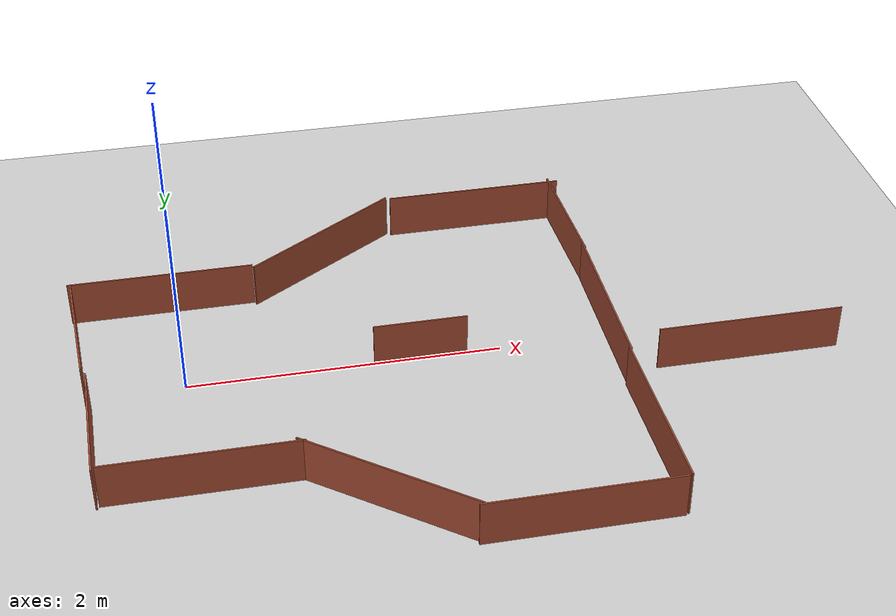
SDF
<sdf version="1.7">
 <world name="default">
  <light name="sun" type="directional">
   <pose>0 0 10 0 -0 0</pose>
   <diffuse>0.8 0.8 0.8 1</diffuse>
   <specular>0.2 0.2 0.2 1</specular>
   <attenuation>
    <range>1000</range>
    <constant>0.9</constant>
    <linear>0.01</linear>
    <quadratic>0.001</quadratic>
   </attenuation>
   <direction>-0.5 0.1 -0.9</direction>
   <spot><inner_angle>0</inner_angle><outer_angle>0</outer_angle><falloff>0</falloff></spot>
  </light>
  <model name="ground_plane">
   <static>1</static>
   <link name="link">
    <collision name="collision">
     <geometry><plane><normal>0 0 1</normal><size>100 100</size></plane></geometry>
     <surface>
      <contact><collide_bitmask>65535</collide_bitmask></contact>
      <friction><ode><mu>100</mu><mu2>50</mu2></ode></friction>
     </surface>
    </collision>
    <visual name="visual">
     <cast_shadows>0</cast_shadows>
     <geometry><plane><normal>0 0 1</normal><size>100 100</size></plane></geometry>
     <material>
      <script><uri>file://media/materials/scripts/gazebo.material</uri><name>Gazebo/Grey</name></script>
     </material>
    </visual>
   </link>
  </model>
  <gravity>0 0 -9.8</gravity>
  <magnetic_field>6e-06 2.3e-05 -4.2e-05</magnetic_field>
  <atmosphere type="adiabatic"/>
  <physics type="ode">
   <max_step_size>0.001</max_step_size>
   <real_time_factor>1</real_time_factor>
   <real_time_update_rate>1000</real_time_update_rate>
  </physics>
  <scene><ambient>0.4 0.4 0.4 1</ambient><background>0.7 0.7 0.7 1</background><shadows>1</shadows></scene>
  <spherical_coordinates>
   <surface_model>EARTH_WGS84</surface_model>
   <latitude_deg>0</latitude_deg>
   <longitude_deg>0</longitude_deg>
   <elevation>0</elevation>
   <heading_deg>0</heading_deg>
  </spherical_coordinates>
  <model name="Pared120">
   <pose>0.058178 -0.506446 0 0 -0 0</pose>
   <link name="Wall_0">
    <collision name="Wall_0_Collision">
     <geometry><box><size>1.2 0.01 0.3</size></box></geometry>
     <pose>0 0 0.15 0 -0 0</pose>
    </collision>
    <visual name="Wall_0_Visual">
     <pose>0 0 0.15 0 -0 0</pose>
     <geometry><box><size>1.2 0.01 0.3</size></box></geometry>
     <material>
      <script><uri>file://media/materials/scripts/gazebo.material</uri><name>Gazebo/Bricks</name></script>
      <ambient>1 1 1 1</ambient>
     </material>
     <meta><layer>0</layer></meta>
    </visual>
    <pose>-0.0225 -0.4975 0 0 -0 0</pose>
   </link>
   <static>1</static>
  </model>
  <model name="Pared120_0">
   <pose>-0.061213 1.32119 0 0 -0 0</pose>
   <link name="Wall_0">
    <collision name="Wall_0_Collision">
     <geometry><box><size>1.2 0.01 0.3</size></box></geometry>
     <pose>0 0 0.15 0 -0 0</pose>
    </collision>
    <visual name="Wall_0_Visual">
     <pose>0 0 0.15 0 -0 0</pose>
     <geometry><box><size>1.2 0.01 0.3</size></box></geometry>
     <material>
      <script><uri>file://media/materials/scripts/gazebo.material</uri><name>Gazebo/Bricks</name></script>
      <ambient>1 1 1 1</ambient>
     </material>
     <meta><layer>0</layer></meta>
    </visual>
    <pose>-0.0225 -0.4975 0 0 -0 0</pose>
   </link>
   <static>1</static>
  </model>
  <model name="Pared90">
   <pose>-0.084849 -0.746159 0 0 0 -1.55986</pose>
   <link name="Wall_0">
    <collision name="Wall_0_Collision">
     <geometry><box><size>0.9 0.01 0.3</size></box></geometry>
     <pose>0 0 0.15 0 -0 0</pose>
    </collision>
    <visual name="Wall_0_Visual">
     <pose>0 0 0.15 0 -0 0</pose>
     <geometry><box><size>0.9 0.01 0.3</size></box></geometry>
     <material>
      <script><uri>file://media/materials/scripts/gazebo.material</uri><name>Gazebo/Bricks</name></script>
      <ambient>1 1 1 1</ambient>
     </material>
     <meta><layer>0</layer></meta>
    </visual>
    <pose>-0.1725 -0.4975 0 0 -0 0</pose>
   </link>
   <static>1</static>
  </model>
  <model name="Pared90_0">
   <pose>-0.133161 0.217663 0 0 0 -1.51879</pose>
   <link name="Wall_0">
    <collision name="Wall_0_Collision">
     <geometry><box><size>0.9 0.01 0.3</size></box></geometry>
     <pose>0 0 0.15 0 -0 0</pose>
    </collision>
    <visual name="Wall_0_Visual">
     <pose>0 0 0.15 0 -0 0</pose>
     <geometry><box><size>0.9 0.01 0.3</size></box></geometry>
     <material>
      <script><uri>file://media/materials/scripts/gazebo.material</uri><name>Gazebo/Bricks</name></script>
      <ambient>1 1 1 1</ambient>
     </material>
     <meta><layer>0</layer></meta>
    </visual>
    <pose>-0.1725 -0.4975 0 0 -0 0</pose>
   </link>
   <static>1</static>
  </model>
  <model name="Pared60">
   <pose>1.80586 0.483224 0 0 -0 0</pose>
   <link name="Wall_0">
    <collision name="Wall_0_Collision">
     <geometry><box><size>0.6 0.01 0.3</size></box></geometry>
     <pose>0 0 0.15 0 -0 0</pose>
    </collision>
    <visual name="Wall_0_Visual">
     <pose>0 0 0.15 0 -0 0</pose>
     <geometry><box><size>0.6 0.01 0.3</size></box></geometry>
     <material>
      <script><uri>file://media/materials/scripts/gazebo.material</uri><name>Gazebo/Bricks</name></script>
      <ambient>1 1 1 1</ambient>
     </material>
     <meta><layer>0</layer></meta>
    </visual>
    <pose>-0.3225 -0.4975 0 0 -0 0</pose>
   </link>
   <static>1</static>
  </model>
  <model name="Pared120_1">
   <pose>0.724012 -1.72341 0 0 -0 2.47021</pose>
   <link name="Wall_0">
    <collision name="Wall_0_Collision">
     <geometry><box><size>1.2 0.01 0.3</size></box></geometry>
     <pose>0 0 0.15 0 -0 0</pose>
    </collision>
    <visual name="Wall_0_Visual">
     <pose>0 0 0.15 0 -0 0</pose>
     <geometry><box><size>1.2 0.01 0.3</size></box></geometry>
     <material>
      <script><uri>file://media/materials/scripts/gazebo.material</uri><name>Gazebo/Bricks</name></script>
      <ambient>1 1 1 1</ambient>
     </material>
     <meta><layer>0</layer></meta>
    </visual>
    <pose>-0.0225 -0.4975 0 0 -0 0</pose>
   </link>
   <static>1</static>
  </model>
  <model name="Pared120_2">
   <pose>0.757219 1.55755 0 0 -0 0.596218</pose>
   <link name="Wall_0">
    <collision name="Wall_0_Collision">
     <geometry><box><size>1.2 0.01 0.3</size></box></geometry>
     <pose>0 0 0.15 0 -0 0</pose>
    </collision>
    <visual name="Wall_0_Visual">
     <pose>0 0 0.15 0 -0 0</pose>
     <geometry><box><size>1.2 0.01 0.3</size></box></geometry>
     <material>
      <script><uri>file://media/materials/scripts/gazebo.material</uri><name>Gazebo/Bricks</name></script>
      <ambient>1 1 1 1</ambient>
     </material>
     <meta><layer>0</layer></meta>
    </visual>
    <pose>-0.0225 -0.4975 0 0 -0 0</pose>
   </link>
   <static>1</static>
  </model>
  <model name="Pared120_3">
   <pose>2.11258 -1.23229 0 0 -0 0</pose>
   <link name="Wall_0">
    <collision name="Wall_0_Collision">
     <geometry><box><size>1.2 0.01 0.3</size></box></geometry>
     <pose>0 0 0.15 0 -0 0</pose>
    </collision>
    <visual name="Wall_0_Visual">
     <pose>0 0 0.15 0 -0 0</pose>
     <geometry><box><size>1.2 0.01 0.3</size></box></geometry>
     <material>
      <script><uri>file://media/materials/scripts/gazebo.material</uri><name>Gazebo/Bricks</name></script>
      <ambient>1 1 1 1</ambient>
     </material>
     <meta><layer>0</layer></meta>
    </visual>
    <pose>-0.0225 -0.4975 0 0 -0 0</pose>
   </link>
   <static>1</static>
  </model>
  <model name="Pared120_4">
   <pose>2.16184 1.94877 0 0 -0 0</pose>
   <link name="Wall_0">
    <collision name="Wall_0_Collision">
     <geometry><box><size>1.2 0.01 0.3</size></box></geometry>
     <pose>0 0 0.15 0 -0 0</pose>
    </collision>
    <visual name="Wall_0_Visual">
     <pose>0 0 0.15 0 -0 0</pose>
     <geometry><box><size>1.2 0.01 0.3</size></box></geometry>
     <material>
      <script><uri>file://media/materials/scripts/gazebo.material</uri><name>Gazebo/Bricks</name></script>
      <ambient>1 1 1 1</ambient>
     </material>
     <meta><layer>0</layer></meta>
    </visual>
    <pose>-0.0225 -0.4975 0 0 -0 0</pose>
   </link>
   <static>1</static>
  </model>
  <model name="Pared120_5">
   <pose>3.19759 -1.1403 0 0 0 -1.55894</pose>
   <link name="Wall_0">
    <collision name="Wall_0_Collision">
     <geometry><box><size>1.2 0.01 0.3</size></box></geometry>
     <pose>0 0 0.15 0 -0 0</pose>
    </collision>
    <visual name="Wall_0_Visual">
     <pose>0 0 0.15 0 -0 0</pose>
     <geometry><box><size>1.2 0.01 0.3</size></box></geometry>
     <material>
      <script><uri>file://media/materials/scripts/gazebo.material</uri><name>Gazebo/Bricks</name></script>
      <ambient>1 1 1 1</ambient>
     </material>
     <meta><layer>0</layer></meta>
    </visual>
    <pose>-0.0225 -0.4975 0 0 -0 0</pose>
   </link>
   <static>1</static>
  </model>
  <model name="Pared120_6">
   <pose>3.55177 0.10488 0 0 -0 0</pose>
   <link name="Wall_0">
    <collision name="Wall_0_Collision">
     <geometry><box><size>1.2 0.01 0.3</size></box></geometry>
     <pose>0 0 0.15 0 -0 0</pose>
    </collision>
    <visual name="Wall_0_Visual">
     <pose>0 0 0.15 0 -0 0</pose>
     <geometry><box><size>1.2 0.01 0.3</size></box></geometry>
     <material>
      <script><uri>file://media/materials/scripts/gazebo.material</uri><name>Gazebo/Bricks</name></script>
      <ambient>1 1 1 1</ambient>
     </material>
     <meta><layer>0</layer></meta>
    </visual>
    <pose>-0.0225 -0.4975 0 0 -0 0</pose>
   </link>
   <static>1</static>
  </model>
  <model name="Pared120_7">
   <pose>2.2092 0.081519 0 0 -0 1.5627</pose>
   <link name="Wall_0">
    <collision name="Wall_0_Collision">
     <geometry><box><size>1.2 0.01 0.3</size></box></geometry>
     <pose>0 0 0.15 0 -0 0</pose>
    </collision>
    <visual name="Wall_0_Visual">
     <pose>0 0 0.15 0 -0 0</pose>
     <geometry><box><size>1.2 0.01 0.3</size></box></geometry>
     <material>
      <script><uri>file://media/materials/scripts/gazebo.material</uri><name>Gazebo/Bricks</name></script>
      <ambient>1 1 1 1</ambient>
     </material>
     <meta><layer>0</layer></meta>
    </visual>
    <pose>-0.0225 -0.4975 0 0 -0 0</pose>
   </link>
   <static>1</static>
  </model>
  <model name="Pared90_1">
   <pose>2.1943 1.19378 0 0 -0 1.60975</pose>
   <link name="Wall_0">
    <collision name="Wall_0_Collision">
     <geometry><box><size>0.9 0.01 0.3</size></box></geometry>
     <pose>0 0 0.15 0 -0 0</pose>
    </collision>
    <visual name="Wall_0_Visual">
     <pose>0 0 0.15 0 -0 0</pose>
     <geometry><box><size>0.9 0.01 0.3</size></box></geometry>
     <material>
      <script><uri>file://media/materials/scripts/gazebo.material</uri><name>Gazebo/Bricks</name></script>
      <ambient>1 1 1 1</ambient>
     </material>
     <meta><layer>0</layer></meta>
    </visual>
    <pose>-0.1725 -0.4975 0 0 -0 0</pose>
   </link>
   <static>1</static>
  </model>
 </world>
</sdf>
